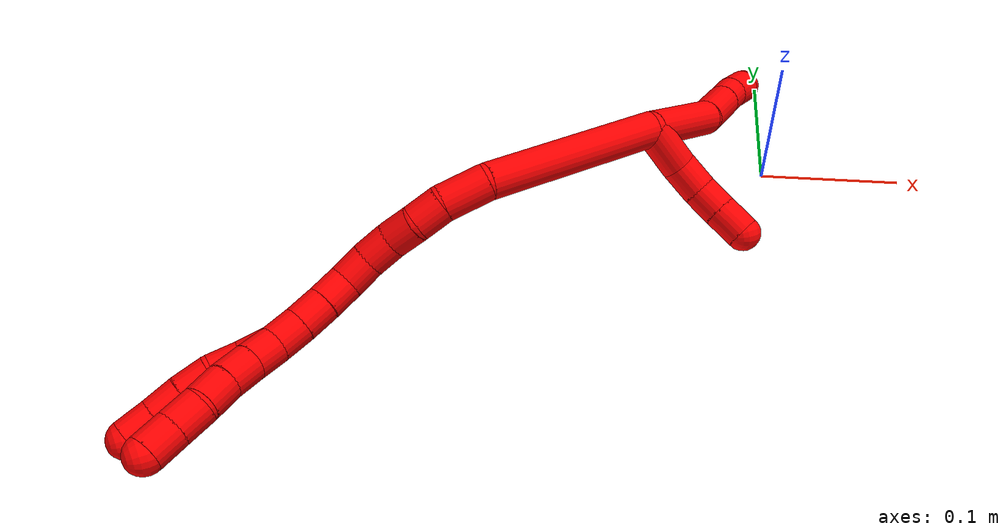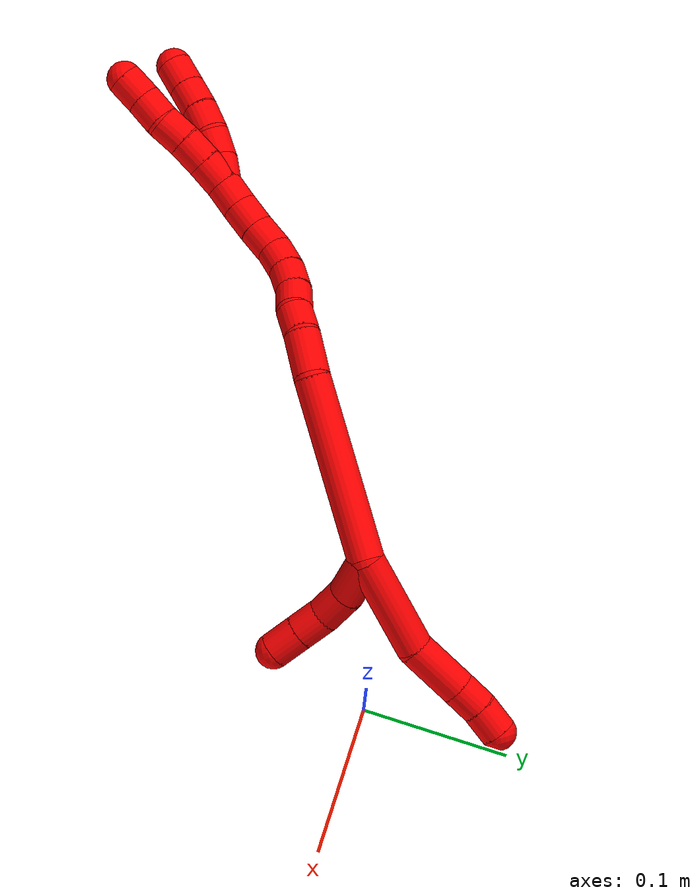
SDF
<sdf version="1.7">
 <world name="default">
  <model name="2">
   <static>0</static>
   <link name="2">
    <collision name="collision-cylinder-e_1_2_8">
     <pose>-0.003233 0.011413 -0.032042 -2.79943 -0.094773 0.535762</pose>
     <geometry><cylinder><radius>0.0125</radius><length>0.068335</length></cylinder></geometry>
     <surface>
      <friction><ode><mu>1.16</mu><mu2>1.16</mu2><slip1>0</slip1><slip2>0</slip2></ode></friction>
      <contact><ode><kp>1e+06</kp><kd>1</kd><max_vel>0</max_vel><min_depth>0.001</min_depth></ode></contact>
     </surface>
    </collision>
    <visual name="visual-cylinder-e_1_2_8">
     <pose>-0.003233 0.011413 -0.032042 -2.79943 -0.094773 0.535762</pose>
     <geometry><cylinder><radius>0.0125</radius><length>0.068335</length></cylinder></geometry>
     <material><ambient>1 0 0 1</ambient></material>
    </visual>
    <collision name="collision-cylinder-e_2_8_9">
     <pose>-0.004364 0.033692 -0.08091 -2.56814 0.104581 -0.351355</pose>
     <geometry><cylinder><radius>0.0125</radius><length>0.040279</length></cylinder></geometry>
     <surface>
      <friction><ode><mu>1.16</mu><mu2>1.16</mu2><slip1>0</slip1><slip2>0</slip2></ode></friction>
      <contact><ode><kp>1e+06</kp><kd>1</kd><max_vel>0</max_vel><min_depth>0.001</min_depth></ode></contact>
     </surface>
    </collision>
    <visual name="visual-cylinder-e_2_8_9">
     <pose>-0.004364 0.033692 -0.08091 -2.56814 0.104581 -0.351355</pose>
     <geometry><cylinder><radius>0.0125</radius><length>0.040279</length></cylinder></geometry>
     <material><ambient>1 0 0 1</ambient></material>
    </visual>
    <collision name="collision-cylinder-e_3_9_10">
     <pose>-0.000884 0.049777 -0.1063 -2.59438 0.136522 -0.477908</pose>
     <geometry><cylinder><radius>0.0125</radius><length>0.020248</length></cylinder></geometry>
     <surface>
      <friction><ode><mu>1.16</mu><mu2>1.16</mu2><slip1>0</slip1><slip2>0</slip2></ode></friction>
      <contact><ode><kp>1e+06</kp><kd>1</kd><max_vel>0</max_vel><min_depth>0.001</min_depth></ode></contact>
     </surface>
    </collision>
    <visual name="visual-cylinder-e_3_9_10">
     <pose>-0.000884 0.049777 -0.1063 -2.59438 0.136522 -0.477908</pose>
     <geometry><cylinder><radius>0.0125</radius><length>0.020248</length></cylinder></geometry>
     <material><ambient>1 0 0 1</ambient></material>
    </visual>
    <collision name="collision-cylinder-e_4_10_6">
     <pose>0.001266 0.059189 -0.124536 -2.73241 0.073175 -0.349228</pose>
     <geometry><cylinder><radius>0.0125</radius><length>0.021139</length></cylinder></geometry>
     <surface>
      <friction><ode><mu>1.16</mu><mu2>1.16</mu2><slip1>0</slip1><slip2>0</slip2></ode></friction>
      <contact><ode><kp>1e+06</kp><kd>1</kd><max_vel>0</max_vel><min_depth>0.001</min_depth></ode></contact>
     </surface>
    </collision>
    <visual name="visual-cylinder-e_4_10_6">
     <pose>0.001266 0.059189 -0.124536 -2.73241 0.073175 -0.349228</pose>
     <geometry><cylinder><radius>0.0125</radius><length>0.021139</length></cylinder></geometry>
     <material><ambient>1 0 0 1</ambient></material>
    </visual>
    <collision name="collision-cylinder-e_1_2_11">
     <pose>-0.01463 -0.001011 -0.008518 3.02347 -1.0405 -2.93589</pose>
     <geometry><cylinder><radius>0.0125</radius><length>0.033918</length></cylinder></geometry>
     <surface>
      <friction><ode><mu>1.16</mu><mu2>1.16</mu2><slip1>0</slip1><slip2>0</slip2></ode></friction>
      <contact><ode><kp>1e+06</kp><kd>1</kd><max_vel>0</max_vel><min_depth>0.001</min_depth></ode></contact>
     </surface>
    </collision>
    <visual name="visual-cylinder-e_1_2_11">
     <pose>-0.01463 -0.001011 -0.008518 3.02347 -1.0405 -2.93589</pose>
     <geometry><cylinder><radius>0.0125</radius><length>0.033918</length></cylinder></geometry>
     <material><ambient>1 0 0 1</ambient></material>
    </visual>
    <collision name="collision-cylinder-e_2_11_12">
     <pose>-0.039013 -0.006452 -0.02176 2.38832 -0.984656 -1.87084</pose>
     <geometry><cylinder><radius>0.0125</radius><length>0.023415</length></cylinder></geometry>
     <surface>
      <friction><ode><mu>1.16</mu><mu2>1.16</mu2><slip1>0</slip1><slip2>0</slip2></ode></friction>
      <contact><ode><kp>1e+06</kp><kd>1</kd><max_vel>0</max_vel><min_depth>0.001</min_depth></ode></contact>
     </surface>
    </collision>
    <visual name="visual-cylinder-e_2_11_12">
     <pose>-0.039013 -0.006452 -0.02176 2.38832 -0.984656 -1.87084</pose>
     <geometry><cylinder><radius>0.0125</radius><length>0.023415</length></cylinder></geometry>
     <material><ambient>1 0 0 1</ambient></material>
    </visual>
    <collision name="collision-cylinder-e_3_12_13">
     <pose>-0.056273 -0.017021 -0.029756 2.06043 -0.823331 -1.25778</pose>
     <geometry><cylinder><radius>0.0125</radius><length>0.02047</length></cylinder></geometry>
     <surface>
      <friction><ode><mu>1.16</mu><mu2>1.16</mu2><slip1>0</slip1><slip2>0</slip2></ode></friction>
      <contact><ode><kp>1e+06</kp><kd>1</kd><max_vel>0</max_vel><min_depth>0.001</min_depth></ode></contact>
     </surface>
    </collision>
    <visual name="visual-cylinder-e_3_12_13">
     <pose>-0.056273 -0.017021 -0.029756 2.06043 -0.823331 -1.25778</pose>
     <geometry><cylinder><radius>0.0125</radius><length>0.02047</length></cylinder></geometry>
     <material><ambient>1 0 0 1</ambient></material>
    </visual>
    <collision name="collision-cylinder-e_4_13_5">
     <pose>-0.071784 -0.029952 -0.036633 2.05879 -0.805532 -1.23284</pose>
     <geometry><cylinder><radius>0.0125</radius><length>0.022197</length></cylinder></geometry>
     <surface>
      <friction><ode><mu>1.16</mu><mu2>1.16</mu2><slip1>0</slip1><slip2>0</slip2></ode></friction>
      <contact><ode><kp>1e+06</kp><kd>1</kd><max_vel>0</max_vel><min_depth>0.001</min_depth></ode></contact>
     </surface>
    </collision>
    <visual name="visual-cylinder-e_4_13_5">
     <pose>-0.071784 -0.029952 -0.036633 2.05879 -0.805532 -1.23284</pose>
     <geometry><cylinder><radius>0.0125</radius><length>0.022197</length></cylinder></geometry>
     <material><ambient>1 0 0 1</ambient></material>
    </visual>
    <collision name="collision-cylinder-e_1_2_14">
     <pose>-0.004027 0.002621 0.063389 -0.041324 -0.063391 0.00131</pose>
     <geometry><cylinder><radius>0.0125</radius><length>0.127142</length></cylinder></geometry>
     <surface>
      <friction><ode><mu>1.16</mu><mu2>1.16</mu2><slip1>0</slip1><slip2>0</slip2></ode></friction>
      <contact><ode><kp>1e+06</kp><kd>1</kd><max_vel>0</max_vel><min_depth>0.001</min_depth></ode></contact>
     </surface>
    </collision>
    <visual name="visual-cylinder-e_1_2_14">
     <pose>-0.004027 0.002621 0.063389 -0.041324 -0.063391 0.00131</pose>
     <geometry><cylinder><radius>0.0125</radius><length>0.127142</length></cylinder></geometry>
     <material><ambient>1 0 0 1</ambient></material>
    </visual>
    <collision name="collision-cylinder-e_2_14_15">
     <pose>-0.01216 0.009136 0.141766 -0.254178 -0.259178 0.033301</pose>
     <geometry><cylinder><radius>0.0125</radius><length>0.03204</length></cylinder></geometry>
     <surface>
      <friction><ode><mu>1.16</mu><mu2>1.16</mu2><slip1>0</slip1><slip2>0</slip2></ode></friction>
      <contact><ode><kp>1e+06</kp><kd>1</kd><max_vel>0</max_vel><min_depth>0.001</min_depth></ode></contact>
     </surface>
    </collision>
    <visual name="visual-cylinder-e_2_14_15">
     <pose>-0.01216 0.009136 0.141766 -0.254178 -0.259178 0.033301</pose>
     <geometry><cylinder><radius>0.0125</radius><length>0.03204</length></cylinder></geometry>
     <material><ambient>1 0 0 1</ambient></material>
    </visual>
    <collision name="collision-cylinder-e_3_15_16">
     <pose>-0.020893 0.016121 0.165497 -0.339883 -0.462785 0.080817</pose>
     <geometry><cylinder><radius>0.0125</radius><length>0.020728</length></cylinder></geometry>
     <surface>
      <friction><ode><mu>1.16</mu><mu2>1.16</mu2><slip1>0</slip1><slip2>0</slip2></ode></friction>
      <contact><ode><kp>1e+06</kp><kd>1</kd><max_vel>0</max_vel><min_depth>0.001</min_depth></ode></contact>
     </surface>
    </collision>
    <visual name="visual-cylinder-e_3_15_16">
     <pose>-0.020893 0.016121 0.165497 -0.339883 -0.462785 0.080817</pose>
     <geometry><cylinder><radius>0.0125</radius><length>0.020728</length></cylinder></geometry>
     <material><ambient>1 0 0 1</ambient></material>
    </visual>
    <collision name="collision-cylinder-e_4_16_17">
     <pose>-0.03012 0.024644 0.181271 -0.65773 -0.477818 0.165852</pose>
     <geometry><cylinder><radius>0.0125</radius><length>0.02001</length></cylinder></geometry>
     <surface>
      <friction><ode><mu>1.16</mu><mu2>1.16</mu2><slip1>0</slip1><slip2>0</slip2></ode></friction>
      <contact><ode><kp>1e+06</kp><kd>1</kd><max_vel>0</max_vel><min_depth>0.001</min_depth></ode></contact>
     </surface>
    </collision>
    <visual name="visual-cylinder-e_4_16_17">
     <pose>-0.03012 0.024644 0.181271 -0.65773 -0.477818 0.165852</pose>
     <geometry><cylinder><radius>0.0125</radius><length>0.02001</length></cylinder></geometry>
     <material><ambient>1 0 0 1</ambient></material>
    </visual>
    <collision name="collision-cylinder-e_5_17_18">
     <pose>-0.039859 0.033419 0.196241 -0.398592 -0.537857 0.111217</pose>
     <geometry><cylinder><radius>0.0125</radius><length>0.020059</length></cylinder></geometry>
     <surface>
      <friction><ode><mu>1.16</mu><mu2>1.16</mu2><slip1>0</slip1><slip2>0</slip2></ode></friction>
      <contact><ode><kp>1e+06</kp><kd>1</kd><max_vel>0</max_vel><min_depth>0.001</min_depth></ode></contact>
     </surface>
    </collision>
    <visual name="visual-cylinder-e_5_17_18">
     <pose>-0.039859 0.033419 0.196241 -0.398592 -0.537857 0.111217</pose>
     <geometry><cylinder><radius>0.0125</radius><length>0.020059</length></cylinder></geometry>
     <material><ambient>1 0 0 1</ambient></material>
    </visual>
    <collision name="collision-cylinder-e_6_18_19">
     <pose>-0.050514 0.03813 0.212411 -0.164655 -0.584132 0.049608</pose>
     <geometry><cylinder><radius>0.0125</radius><length>0.020007</length></cylinder></geometry>
     <surface>
      <friction><ode><mu>1.16</mu><mu2>1.16</mu2><slip1>0</slip1><slip2>0</slip2></ode></friction>
      <contact><ode><kp>1e+06</kp><kd>1</kd><max_vel>0</max_vel><min_depth>0.001</min_depth></ode></contact>
     </surface>
    </collision>
    <visual name="visual-cylinder-e_6_18_19">
     <pose>-0.050514 0.03813 0.212411 -0.164655 -0.584132 0.049608</pose>
     <geometry><cylinder><radius>0.0125</radius><length>0.020007</length></cylinder></geometry>
     <material><ambient>1 0 0 1</ambient></material>
    </visual>
    <collision name="collision-cylinder-e_7_19_20">
     <pose>-0.060219 0.037782 0.229562 0.190057 -0.432097 -0.041832</pose>
     <geometry><cylinder><radius>0.0125</radius><length>0.020002</length></cylinder></geometry>
     <surface>
      <friction><ode><mu>1.16</mu><mu2>1.16</mu2><slip1>0</slip1><slip2>0</slip2></ode></friction>
      <contact><ode><kp>1e+06</kp><kd>1</kd><max_vel>0</max_vel><min_depth>0.001</min_depth></ode></contact>
     </surface>
    </collision>
    <visual name="visual-cylinder-e_7_19_20">
     <pose>-0.060219 0.037782 0.229562 0.190057 -0.432097 -0.041832</pose>
     <geometry><cylinder><radius>0.0125</radius><length>0.020002</length></cylinder></geometry>
     <material><ambient>1 0 0 1</ambient></material>
    </visual>
    <collision name="collision-cylinder-e_8_20_21">
     <pose>-0.068393 0.034706 0.247553 0.148776 -0.409787 -0.030972</pose>
     <geometry><cylinder><radius>0.0125</radius><length>0.020005</length></cylinder></geometry>
     <surface>
      <friction><ode><mu>1.16</mu><mu2>1.16</mu2><slip1>0</slip1><slip2>0</slip2></ode></friction>
      <contact><ode><kp>1e+06</kp><kd>1</kd><max_vel>0</max_vel><min_depth>0.001</min_depth></ode></contact>
     </surface>
    </collision>
    <visual name="visual-cylinder-e_8_20_21">
     <pose>-0.068393 0.034706 0.247553 0.148776 -0.409787 -0.030972</pose>
     <geometry><cylinder><radius>0.0125</radius><length>0.020005</length></cylinder></geometry>
     <material><ambient>1 0 0 1</ambient></material>
    </visual>
    <collision name="collision-cylinder-e_9_21_1">
     <pose>-0.075827 0.0319 0.265903 0.154636 -0.35204 -0.027557</pose>
     <geometry><cylinder><radius>0.0125</radius><length>0.020005</length></cylinder></geometry>
     <surface>
      <friction><ode><mu>1.16</mu><mu2>1.16</mu2><slip1>0</slip1><slip2>0</slip2></ode></friction>
      <contact><ode><kp>1e+06</kp><kd>1</kd><max_vel>0</max_vel><min_depth>0.001</min_depth></ode></contact>
     </surface>
    </collision>
    <visual name="visual-cylinder-e_9_21_1">
     <pose>-0.075827 0.0319 0.265903 0.154636 -0.35204 -0.027557</pose>
     <geometry><cylinder><radius>0.0125</radius><length>0.020005</length></cylinder></geometry>
     <material><ambient>1 0 0 1</ambient></material>
    </visual>
    <collision name="collision-cylinder-e_1_1_22">
     <pose>-0.081114 0.026608 0.284226 0.402042 -0.184848 -0.03777</pose>
     <geometry><cylinder><radius>0.0125</radius><length>0.02</length></cylinder></geometry>
     <surface>
      <friction><ode><mu>1.16</mu><mu2>1.16</mu2><slip1>0</slip1><slip2>0</slip2></ode></friction>
      <contact><ode><kp>1e+06</kp><kd>1</kd><max_vel>0</max_vel><min_depth>0.001</min_depth></ode></contact>
     </surface>
    </collision>
    <visual name="visual-cylinder-e_1_1_22">
     <pose>-0.081114 0.026608 0.284226 0.402042 -0.184848 -0.03777</pose>
     <geometry><cylinder><radius>0.0125</radius><length>0.02</length></cylinder></geometry>
     <material><ambient>1 0 0 1</ambient></material>
    </visual>
    <collision name="collision-cylinder-e_2_22_23">
     <pose>-0.084951 0.018624 0.302154 0.435902 -0.2013 -0.044725</pose>
     <geometry><cylinder><radius>0.0125</radius><length>0.02</length></cylinder></geometry>
     <surface>
      <friction><ode><mu>1.16</mu><mu2>1.16</mu2><slip1>0</slip1><slip2>0</slip2></ode></friction>
      <contact><ode><kp>1e+06</kp><kd>1</kd><max_vel>0</max_vel><min_depth>0.001</min_depth></ode></contact>
     </surface>
    </collision>
    <visual name="visual-cylinder-e_2_22_23">
     <pose>-0.084951 0.018624 0.302154 0.435902 -0.2013 -0.044725</pose>
     <geometry><cylinder><radius>0.0125</radius><length>0.02</length></cylinder></geometry>
     <material><ambient>1 0 0 1</ambient></material>
    </visual>
    <collision name="collision-cylinder-e_3_23_24">
     <pose>-0.089711 0.009897 0.31948 0.497862 -0.27968 -0.071532</pose>
     <geometry><cylinder><radius>0.0125</radius><length>0.02</length></cylinder></geometry>
     <surface>
      <friction><ode><mu>1.16</mu><mu2>1.16</mu2><slip1>0</slip1><slip2>0</slip2></ode></friction>
      <contact><ode><kp>1e+06</kp><kd>1</kd><max_vel>0</max_vel><min_depth>0.001</min_depth></ode></contact>
     </surface>
    </collision>
    <visual name="visual-cylinder-e_3_23_24">
     <pose>-0.089711 0.009897 0.31948 0.497862 -0.27968 -0.071532</pose>
     <geometry><cylinder><radius>0.0125</radius><length>0.02</length></cylinder></geometry>
     <material><ambient>1 0 0 1</ambient></material>
    </visual>
    <collision name="collision-cylinder-e_4_24_25">
     <pose>-0.095928 0.002837 0.336978 0.26643 -0.352903 -0.04778</pose>
     <geometry><cylinder><radius>0.0125</radius><length>0.02</length></cylinder></geometry>
     <surface>
      <friction><ode><mu>1.16</mu><mu2>1.16</mu2><slip1>0</slip1><slip2>0</slip2></ode></friction>
      <contact><ode><kp>1e+06</kp><kd>1</kd><max_vel>0</max_vel><min_depth>0.001</min_depth></ode></contact>
     </surface>
    </collision>
    <visual name="visual-cylinder-e_4_24_25">
     <pose>-0.095928 0.002837 0.336978 0.26643 -0.352903 -0.04778</pose>
     <geometry><cylinder><radius>0.0125</radius><length>0.02</length></cylinder></geometry>
     <material><ambient>1 0 0 1</ambient></material>
    </visual>
    <collision name="collision-cylinder-e_5_25_4">
     <pose>-0.102592 -0.002744 0.354977 0.334539 -0.326561 -0.05562</pose>
     <geometry><cylinder><radius>0.0125</radius><length>0.02</length></cylinder></geometry>
     <surface>
      <friction><ode><mu>1.16</mu><mu2>1.16</mu2><slip1>0</slip1><slip2>0</slip2></ode></friction>
      <contact><ode><kp>1e+06</kp><kd>1</kd><max_vel>0</max_vel><min_depth>0.001</min_depth></ode></contact>
     </surface>
    </collision>
    <visual name="visual-cylinder-e_5_25_4">
     <pose>-0.102592 -0.002744 0.354977 0.334539 -0.326561 -0.05562</pose>
     <geometry><cylinder><radius>0.0125</radius><length>0.02</length></cylinder></geometry>
     <material><ambient>1 0 0 1</ambient></material>
    </visual>
    <collision name="collision-cylinder-e_1_1_26">
     <pose>-0.082127 0.033706 0.284197 -0.346153 -0.28911 0.050888</pose>
     <geometry><cylinder><radius>0.0125</radius><length>0.02</length></cylinder></geometry>
     <surface>
      <friction><ode><mu>1.16</mu><mu2>1.16</mu2><slip1>0</slip1><slip2>0</slip2></ode></friction>
      <contact><ode><kp>1e+06</kp><kd>1</kd><max_vel>0</max_vel><min_depth>0.001</min_depth></ode></contact>
     </surface>
    </collision>
    <visual name="visual-cylinder-e_1_1_26">
     <pose>-0.082127 0.033706 0.284197 -0.346153 -0.28911 0.050888</pose>
     <geometry><cylinder><radius>0.0125</radius><length>0.02</length></cylinder></geometry>
     <material><ambient>1 0 0 1</ambient></material>
    </visual>
    <collision name="collision-cylinder-e_2_26_27">
     <pose>-0.086466 0.037524 0.303086 -0.057274 -0.149377 0.004287</pose>
     <geometry><cylinder><radius>0.0125</radius><length>0.02</length></cylinder></geometry>
     <surface>
      <friction><ode><mu>1.16</mu><mu2>1.16</mu2><slip1>0</slip1><slip2>0</slip2></ode></friction>
      <contact><ode><kp>1e+06</kp><kd>1</kd><max_vel>0</max_vel><min_depth>0.001</min_depth></ode></contact>
     </surface>
    </collision>
    <visual name="visual-cylinder-e_2_26_27">
     <pose>-0.086466 0.037524 0.303086 -0.057274 -0.149377 0.004287</pose>
     <geometry><cylinder><radius>0.0125</radius><length>0.02</length></cylinder></geometry>
     <material><ambient>1 0 0 1</ambient></material>
    </visual>
    <collision name="collision-cylinder-e_3_27_28">
     <pose>-0.091626 0.039147 0.322199 -0.113925 -0.37598 0.021695</pose>
     <geometry><cylinder><radius>0.0125</radius><length>0.02</length></cylinder></geometry>
     <surface>
      <friction><ode><mu>1.16</mu><mu2>1.16</mu2><slip1>0</slip1><slip2>0</slip2></ode></friction>
      <contact><ode><kp>1e+06</kp><kd>1</kd><max_vel>0</max_vel><min_depth>0.001</min_depth></ode></contact>
     </surface>
    </collision>
    <visual name="visual-cylinder-e_3_27_28">
     <pose>-0.091626 0.039147 0.322199 -0.113925 -0.37598 0.021695</pose>
     <geometry><cylinder><radius>0.0125</radius><length>0.02</length></cylinder></geometry>
     <material><ambient>1 0 0 1</ambient></material>
    </visual>
    <collision name="collision-cylinder-e_4_28_29">
     <pose>-0.099704 0.040763 0.3404 -0.062232 -0.456252 0.014453</pose>
     <geometry><cylinder><radius>0.0125</radius><length>0.02</length></cylinder></geometry>
     <surface>
      <friction><ode><mu>1.16</mu><mu2>1.16</mu2><slip1>0</slip1><slip2>0</slip2></ode></friction>
      <contact><ode><kp>1e+06</kp><kd>1</kd><max_vel>0</max_vel><min_depth>0.001</min_depth></ode></contact>
     </surface>
    </collision>
    <visual name="visual-cylinder-e_4_28_29">
     <pose>-0.099704 0.040763 0.3404 -0.062232 -0.456252 0.014453</pose>
     <geometry><cylinder><radius>0.0125</radius><length>0.02</length></cylinder></geometry>
     <material><ambient>1 0 0 1</ambient></material>
    </visual>
    <collision name="collision-cylinder-e_5_29_3">
     <pose>-0.107966 0.041317 0.358587 0.000449 -0.395879 -9e-05</pose>
     <geometry><cylinder><radius>0.0125</radius><length>0.02</length></cylinder></geometry>
     <surface>
      <friction><ode><mu>1.16</mu><mu2>1.16</mu2><slip1>0</slip1><slip2>0</slip2></ode></friction>
      <contact><ode><kp>1e+06</kp><kd>1</kd><max_vel>0</max_vel><min_depth>0.001</min_depth></ode></contact>
     </surface>
    </collision>
    <visual name="visual-cylinder-e_5_29_3">
     <pose>-0.107966 0.041317 0.358587 0.000449 -0.395879 -9e-05</pose>
     <geometry><cylinder><radius>0.0125</radius><length>0.02</length></cylinder></geometry>
     <material><ambient>1 0 0 1</ambient></material>
    </visual>
    <collision name="collision-sphere-3">
     <pose>-0.111822 0.041313 0.367813 0 -0 0</pose>
     <geometry><sphere><radius>0.0125</radius></sphere></geometry>
     <surface>
      <friction><ode><mu>1.16</mu><mu2>1.16</mu2><slip1>0</slip1><slip2>0</slip2></ode></friction>
      <contact><ode><kp>1e+06</kp><kd>1</kd><max_vel>0</max_vel><min_depth>0.001</min_depth></ode></contact>
     </surface>
    </collision>
    <visual name="visual-sphere-3">
     <pose>-0.111822 0.041313 0.367813 0 -0 0</pose>
     <geometry><sphere><radius>0.0125</radius></sphere></geometry>
     <material><ambient>1 0 0 1</ambient></material>
    </visual>
    <collision name="collision-sphere-29">
     <pose>-0.10411 0.041321 0.34936 0 -0 0</pose>
     <geometry><sphere><radius>0.0125</radius></sphere></geometry>
     <surface>
      <friction><ode><mu>1.16</mu><mu2>1.16</mu2><slip1>0</slip1><slip2>0</slip2></ode></friction>
      <contact><ode><kp>1e+06</kp><kd>1</kd><max_vel>0</max_vel><min_depth>0.001</min_depth></ode></contact>
     </surface>
    </collision>
    <visual name="visual-sphere-29">
     <pose>-0.10411 0.041321 0.34936 0 -0 0</pose>
     <geometry><sphere><radius>0.0125</radius></sphere></geometry>
     <material><ambient>1 0 0 1</ambient></material>
    </visual>
    <collision name="collision-sphere-28">
     <pose>-0.095298 0.040205 0.33144 0 -0 0</pose>
     <geometry><sphere><radius>0.0125</radius></sphere></geometry>
     <surface>
      <friction><ode><mu>1.16</mu><mu2>1.16</mu2><slip1>0</slip1><slip2>0</slip2></ode></friction>
      <contact><ode><kp>1e+06</kp><kd>1</kd><max_vel>0</max_vel><min_depth>0.001</min_depth></ode></contact>
     </surface>
    </collision>
    <visual name="visual-sphere-28">
     <pose>-0.095298 0.040205 0.33144 0 -0 0</pose>
     <geometry><sphere><radius>0.0125</radius></sphere></geometry>
     <material><ambient>1 0 0 1</ambient></material>
    </visual>
    <collision name="collision-sphere-27">
     <pose>-0.087954 0.03809 0.312958 0 -0 0</pose>
     <geometry><sphere><radius>0.0125</radius></sphere></geometry>
     <surface>
      <friction><ode><mu>1.16</mu><mu2>1.16</mu2><slip1>0</slip1><slip2>0</slip2></ode></friction>
      <contact><ode><kp>1e+06</kp><kd>1</kd><max_vel>0</max_vel><min_depth>0.001</min_depth></ode></contact>
     </surface>
    </collision>
    <visual name="visual-sphere-27">
     <pose>-0.087954 0.03809 0.312958 0 -0 0</pose>
     <geometry><sphere><radius>0.0125</radius></sphere></geometry>
     <material><ambient>1 0 0 1</ambient></material>
    </visual>
    <collision name="collision-sphere-26">
     <pose>-0.084978 0.036958 0.293213 0 -0 0</pose>
     <geometry><sphere><radius>0.0125</radius></sphere></geometry>
     <surface>
      <friction><ode><mu>1.16</mu><mu2>1.16</mu2><slip1>0</slip1><slip2>0</slip2></ode></friction>
      <contact><ode><kp>1e+06</kp><kd>1</kd><max_vel>0</max_vel><min_depth>0.001</min_depth></ode></contact>
     </surface>
    </collision>
    <visual name="visual-sphere-26">
     <pose>-0.084978 0.036958 0.293213 0 -0 0</pose>
     <geometry><sphere><radius>0.0125</radius></sphere></geometry>
     <material><ambient>1 0 0 1</ambient></material>
    </visual>
    <collision name="collision-sphere-4">
     <pose>-0.1058 -0.005854 0.363923 0 -0 0</pose>
     <geometry><sphere><radius>0.0125</radius></sphere></geometry>
     <surface>
      <friction><ode><mu>1.16</mu><mu2>1.16</mu2><slip1>0</slip1><slip2>0</slip2></ode></friction>
      <contact><ode><kp>1e+06</kp><kd>1</kd><max_vel>0</max_vel><min_depth>0.001</min_depth></ode></contact>
     </surface>
    </collision>
    <visual name="visual-sphere-4">
     <pose>-0.1058 -0.005854 0.363923 0 -0 0</pose>
     <geometry><sphere><radius>0.0125</radius></sphere></geometry>
     <material><ambient>1 0 0 1</ambient></material>
    </visual>
    <collision name="collision-sphere-25">
     <pose>-0.099384 0.000366 0.34603 0 -0 0</pose>
     <geometry><sphere><radius>0.0125</radius></sphere></geometry>
     <surface>
      <friction><ode><mu>1.16</mu><mu2>1.16</mu2><slip1>0</slip1><slip2>0</slip2></ode></friction>
      <contact><ode><kp>1e+06</kp><kd>1</kd><max_vel>0</max_vel><min_depth>0.001</min_depth></ode></contact>
     </surface>
    </collision>
    <visual name="visual-sphere-25">
     <pose>-0.099384 0.000366 0.34603 0 -0 0</pose>
     <geometry><sphere><radius>0.0125</radius></sphere></geometry>
     <material><ambient>1 0 0 1</ambient></material>
    </visual>
    <collision name="collision-sphere-24">
     <pose>-0.092472 0.005307 0.327925 0 -0 0</pose>
     <geometry><sphere><radius>0.0125</radius></sphere></geometry>
     <surface>
      <friction><ode><mu>1.16</mu><mu2>1.16</mu2><slip1>0</slip1><slip2>0</slip2></ode></friction>
      <contact><ode><kp>1e+06</kp><kd>1</kd><max_vel>0</max_vel><min_depth>0.001</min_depth></ode></contact>
     </surface>
    </collision>
    <visual name="visual-sphere-24">
     <pose>-0.092472 0.005307 0.327925 0 -0 0</pose>
     <geometry><sphere><radius>0.0125</radius></sphere></geometry>
     <material><ambient>1 0 0 1</ambient></material>
    </visual>
    <collision name="collision-sphere-23">
     <pose>-0.086951 0.014487 0.311036 0 -0 0</pose>
     <geometry><sphere><radius>0.0125</radius></sphere></geometry>
     <surface>
      <friction><ode><mu>1.16</mu><mu2>1.16</mu2><slip1>0</slip1><slip2>0</slip2></ode></friction>
      <contact><ode><kp>1e+06</kp><kd>1</kd><max_vel>0</max_vel><min_depth>0.001</min_depth></ode></contact>
     </surface>
    </collision>
    <visual name="visual-sphere-23">
     <pose>-0.086951 0.014487 0.311036 0 -0 0</pose>
     <geometry><sphere><radius>0.0125</radius></sphere></geometry>
     <material><ambient>1 0 0 1</ambient></material>
    </visual>
    <collision name="collision-sphere-22">
     <pose>-0.082952 0.022761 0.293272 0 -0 0</pose>
     <geometry><sphere><radius>0.0125</radius></sphere></geometry>
     <surface>
      <friction><ode><mu>1.16</mu><mu2>1.16</mu2><slip1>0</slip1><slip2>0</slip2></ode></friction>
      <contact><ode><kp>1e+06</kp><kd>1</kd><max_vel>0</max_vel><min_depth>0.001</min_depth></ode></contact>
     </surface>
    </collision>
    <visual name="visual-sphere-22">
     <pose>-0.082952 0.022761 0.293272 0 -0 0</pose>
     <geometry><sphere><radius>0.0125</radius></sphere></geometry>
     <material><ambient>1 0 0 1</ambient></material>
    </visual>
    <collision name="collision-sphere-1">
     <pose>-0.079276 0.030454 0.27518 0 -0 0</pose>
     <geometry><sphere><radius>0.0125</radius></sphere></geometry>
     <surface>
      <friction><ode><mu>1.16</mu><mu2>1.16</mu2><slip1>0</slip1><slip2>0</slip2></ode></friction>
      <contact><ode><kp>1e+06</kp><kd>1</kd><max_vel>0</max_vel><min_depth>0.001</min_depth></ode></contact>
     </surface>
    </collision>
    <visual name="visual-sphere-1">
     <pose>-0.079276 0.030454 0.27518 0 -0 0</pose>
     <geometry><sphere><radius>0.0125</radius></sphere></geometry>
     <material><ambient>1 0 0 1</ambient></material>
    </visual>
    <collision name="collision-sphere-21">
     <pose>-0.072378 0.033346 0.256626 0 -0 0</pose>
     <geometry><sphere><radius>0.0125</radius></sphere></geometry>
     <surface>
      <friction><ode><mu>1.16</mu><mu2>1.16</mu2><slip1>0</slip1><slip2>0</slip2></ode></friction>
      <contact><ode><kp>1e+06</kp><kd>1</kd><max_vel>0</max_vel><min_depth>0.001</min_depth></ode></contact>
     </surface>
    </collision>
    <visual name="visual-sphere-21">
     <pose>-0.072378 0.033346 0.256626 0 -0 0</pose>
     <geometry><sphere><radius>0.0125</radius></sphere></geometry>
     <material><ambient>1 0 0 1</ambient></material>
    </visual>
    <collision name="collision-sphere-11">
     <pose>-0.02926 -0.002022 -0.017036 0 -0 0</pose>
     <geometry><sphere><radius>0.0125</radius></sphere></geometry>
     <surface>
      <friction><ode><mu>1.16</mu><mu2>1.16</mu2><slip1>0</slip1><slip2>0</slip2></ode></friction>
      <contact><ode><kp>1e+06</kp><kd>1</kd><max_vel>0</max_vel><min_depth>0.001</min_depth></ode></contact>
     </surface>
    </collision>
    <visual name="visual-sphere-11">
     <pose>-0.02926 -0.002022 -0.017036 0 -0 0</pose>
     <geometry><sphere><radius>0.0125</radius></sphere></geometry>
     <material><ambient>1 0 0 1</ambient></material>
    </visual>
    <collision name="collision-sphere-6">
     <pose>0.002039 0.063383 -0.134207 0 -0 0</pose>
     <geometry><sphere><radius>0.0125</radius></sphere></geometry>
     <surface>
      <friction><ode><mu>1.16</mu><mu2>1.16</mu2><slip1>0</slip1><slip2>0</slip2></ode></friction>
      <contact><ode><kp>1e+06</kp><kd>1</kd><max_vel>0</max_vel><min_depth>0.001</min_depth></ode></contact>
     </surface>
    </collision>
    <visual name="visual-sphere-6">
     <pose>0.002039 0.063383 -0.134207 0 -0 0</pose>
     <geometry><sphere><radius>0.0125</radius></sphere></geometry>
     <material><ambient>1 0 0 1</ambient></material>
    </visual>
    <collision name="collision-sphere-10">
     <pose>0.000494 0.054996 -0.114865 0 -0 0</pose>
     <geometry><sphere><radius>0.0125</radius></sphere></geometry>
     <surface>
      <friction><ode><mu>1.16</mu><mu2>1.16</mu2><slip1>0</slip1><slip2>0</slip2></ode></friction>
      <contact><ode><kp>1e+06</kp><kd>1</kd><max_vel>0</max_vel><min_depth>0.001</min_depth></ode></contact>
     </surface>
    </collision>
    <visual name="visual-sphere-10">
     <pose>0.000494 0.054996 -0.114865 0 -0 0</pose>
     <geometry><sphere><radius>0.0125</radius></sphere></geometry>
     <material><ambient>1 0 0 1</ambient></material>
    </visual>
    <collision name="collision-sphere-9">
     <pose>-0.002262 0.044559 -0.097735 0 -0 0</pose>
     <geometry><sphere><radius>0.0125</radius></sphere></geometry>
     <surface>
      <friction><ode><mu>1.16</mu><mu2>1.16</mu2><slip1>0</slip1><slip2>0</slip2></ode></friction>
      <contact><ode><kp>1e+06</kp><kd>1</kd><max_vel>0</max_vel><min_depth>0.001</min_depth></ode></contact>
     </surface>
    </collision>
    <visual name="visual-sphere-9">
     <pose>-0.002262 0.044559 -0.097735 0 -0 0</pose>
     <geometry><sphere><radius>0.0125</radius></sphere></geometry>
     <material><ambient>1 0 0 1</ambient></material>
    </visual>
    <collision name="collision-sphere-2">
     <geometry><sphere><radius>0.0125</radius></sphere></geometry>
     <surface>
      <friction><ode><mu>1.16</mu><mu2>1.16</mu2><slip1>0</slip1><slip2>0</slip2></ode></friction>
      <contact><ode><kp>1e+06</kp><kd>1</kd><max_vel>0</max_vel><min_depth>0.001</min_depth></ode></contact>
     </surface>
    </collision>
    <visual name="visual-sphere-2">
     <geometry><sphere><radius>0.0125</radius></sphere></geometry>
     <material><ambient>1 0 0 1</ambient></material>
    </visual>
    <collision name="collision-sphere-19">
     <pose>-0.056031 0.039497 0.220643 0 -0 0</pose>
     <geometry><sphere><radius>0.0125</radius></sphere></geometry>
     <surface>
      <friction><ode><mu>1.16</mu><mu2>1.16</mu2><slip1>0</slip1><slip2>0</slip2></ode></friction>
      <contact><ode><kp>1e+06</kp><kd>1</kd><max_vel>0</max_vel><min_depth>0.001</min_depth></ode></contact>
     </surface>
    </collision>
    <visual name="visual-sphere-19">
     <pose>-0.056031 0.039497 0.220643 0 -0 0</pose>
     <geometry><sphere><radius>0.0125</radius></sphere></geometry>
     <material><ambient>1 0 0 1</ambient></material>
    </visual>
    <collision name="collision-sphere-8">
     <pose>-0.006467 0.022825 -0.064085 0 -0 0</pose>
     <geometry><sphere><radius>0.0125</radius></sphere></geometry>
     <surface>
      <friction><ode><mu>1.16</mu><mu2>1.16</mu2><slip1>0</slip1><slip2>0</slip2></ode></friction>
      <contact><ode><kp>1e+06</kp><kd>1</kd><max_vel>0</max_vel><min_depth>0.001</min_depth></ode></contact>
     </surface>
    </collision>
    <visual name="visual-sphere-8">
     <pose>-0.006467 0.022825 -0.064085 0 -0 0</pose>
     <geometry><sphere><radius>0.0125</radius></sphere></geometry>
     <material><ambient>1 0 0 1</ambient></material>
    </visual>
    <collision name="collision-sphere-12">
     <pose>-0.048766 -0.010881 -0.026484 0 -0 0</pose>
     <geometry><sphere><radius>0.0125</radius></sphere></geometry>
     <surface>
      <friction><ode><mu>1.16</mu><mu2>1.16</mu2><slip1>0</slip1><slip2>0</slip2></ode></friction>
      <contact><ode><kp>1e+06</kp><kd>1</kd><max_vel>0</max_vel><min_depth>0.001</min_depth></ode></contact>
     </surface>
    </collision>
    <visual name="visual-sphere-12">
     <pose>-0.048766 -0.010881 -0.026484 0 -0 0</pose>
     <geometry><sphere><radius>0.0125</radius></sphere></geometry>
     <material><ambient>1 0 0 1</ambient></material>
    </visual>
    <collision name="collision-sphere-13">
     <pose>-0.063779 -0.023162 -0.033028 0 -0 0</pose>
     <geometry><sphere><radius>0.0125</radius></sphere></geometry>
     <surface>
      <friction><ode><mu>1.16</mu><mu2>1.16</mu2><slip1>0</slip1><slip2>0</slip2></ode></friction>
      <contact><ode><kp>1e+06</kp><kd>1</kd><max_vel>0</max_vel><min_depth>0.001</min_depth></ode></contact>
     </surface>
    </collision>
    <visual name="visual-sphere-13">
     <pose>-0.063779 -0.023162 -0.033028 0 -0 0</pose>
     <geometry><sphere><radius>0.0125</radius></sphere></geometry>
     <material><ambient>1 0 0 1</ambient></material>
    </visual>
    <collision name="collision-sphere-5">
     <pose>-0.079788 -0.036743 -0.040237 0 -0 0</pose>
     <geometry><sphere><radius>0.0125</radius></sphere></geometry>
     <surface>
      <friction><ode><mu>1.16</mu><mu2>1.16</mu2><slip1>0</slip1><slip2>0</slip2></ode></friction>
      <contact><ode><kp>1e+06</kp><kd>1</kd><max_vel>0</max_vel><min_depth>0.001</min_depth></ode></contact>
     </surface>
    </collision>
    <visual name="visual-sphere-5">
     <pose>-0.079788 -0.036743 -0.040237 0 -0 0</pose>
     <geometry><sphere><radius>0.0125</radius></sphere></geometry>
     <material><ambient>1 0 0 1</ambient></material>
    </visual>
    <collision name="collision-sphere-14">
     <pose>-0.008054 0.005242 0.126779 0 -0 0</pose>
     <geometry><sphere><radius>0.0125</radius></sphere></geometry>
     <surface>
      <friction><ode><mu>1.16</mu><mu2>1.16</mu2><slip1>0</slip1><slip2>0</slip2></ode></friction>
      <contact><ode><kp>1e+06</kp><kd>1</kd><max_vel>0</max_vel><min_depth>0.001</min_depth></ode></contact>
     </surface>
    </collision>
    <visual name="visual-sphere-14">
     <pose>-0.008054 0.005242 0.126779 0 -0 0</pose>
     <geometry><sphere><radius>0.0125</radius></sphere></geometry>
     <material><ambient>1 0 0 1</ambient></material>
    </visual>
    <collision name="collision-sphere-15">
     <pose>-0.016266 0.013029 0.156754 0 -0 0</pose>
     <geometry><sphere><radius>0.0125</radius></sphere></geometry>
     <surface>
      <friction><ode><mu>1.16</mu><mu2>1.16</mu2><slip1>0</slip1><slip2>0</slip2></ode></friction>
      <contact><ode><kp>1e+06</kp><kd>1</kd><max_vel>0</max_vel><min_depth>0.001</min_depth></ode></contact>
     </surface>
    </collision>
    <visual name="visual-sphere-15">
     <pose>-0.016266 0.013029 0.156754 0 -0 0</pose>
     <geometry><sphere><radius>0.0125</radius></sphere></geometry>
     <material><ambient>1 0 0 1</ambient></material>
    </visual>
    <collision name="collision-sphere-16">
     <pose>-0.02552 0.019213 0.17424 0 -0 0</pose>
     <geometry><sphere><radius>0.0125</radius></sphere></geometry>
     <surface>
      <friction><ode><mu>1.16</mu><mu2>1.16</mu2><slip1>0</slip1><slip2>0</slip2></ode></friction>
      <contact><ode><kp>1e+06</kp><kd>1</kd><max_vel>0</max_vel><min_depth>0.001</min_depth></ode></contact>
     </surface>
    </collision>
    <visual name="visual-sphere-16">
     <pose>-0.02552 0.019213 0.17424 0 -0 0</pose>
     <geometry><sphere><radius>0.0125</radius></sphere></geometry>
     <material><ambient>1 0 0 1</ambient></material>
    </visual>
    <collision name="collision-sphere-17">
     <pose>-0.034721 0.030075 0.188303 0 -0 0</pose>
     <geometry><sphere><radius>0.0125</radius></sphere></geometry>
     <surface>
      <friction><ode><mu>1.16</mu><mu2>1.16</mu2><slip1>0</slip1><slip2>0</slip2></ode></friction>
      <contact><ode><kp>1e+06</kp><kd>1</kd><max_vel>0</max_vel><min_depth>0.001</min_depth></ode></contact>
     </surface>
    </collision>
    <visual name="visual-sphere-17">
     <pose>-0.034721 0.030075 0.188303 0 -0 0</pose>
     <geometry><sphere><radius>0.0125</radius></sphere></geometry>
     <material><ambient>1 0 0 1</ambient></material>
    </visual>
    <collision name="collision-sphere-18">
     <pose>-0.044998 0.036762 0.204179 0 -0 0</pose>
     <geometry><sphere><radius>0.0125</radius></sphere></geometry>
     <surface>
      <friction><ode><mu>1.16</mu><mu2>1.16</mu2><slip1>0</slip1><slip2>0</slip2></ode></friction>
      <contact><ode><kp>1e+06</kp><kd>1</kd><max_vel>0</max_vel><min_depth>0.001</min_depth></ode></contact>
     </surface>
    </collision>
    <visual name="visual-sphere-18">
     <pose>-0.044998 0.036762 0.204179 0 -0 0</pose>
     <geometry><sphere><radius>0.0125</radius></sphere></geometry>
     <material><ambient>1 0 0 1</ambient></material>
    </visual>
    <collision name="collision-sphere-20">
     <pose>-0.064408 0.036066 0.23848 0 -0 0</pose>
     <geometry><sphere><radius>0.0125</radius></sphere></geometry>
     <surface>
      <friction><ode><mu>1.16</mu><mu2>1.16</mu2><slip1>0</slip1><slip2>0</slip2></ode></friction>
      <contact><ode><kp>1e+06</kp><kd>1</kd><max_vel>0</max_vel><min_depth>0.001</min_depth></ode></contact>
     </surface>
    </collision>
    <visual name="visual-sphere-20">
     <pose>-0.064408 0.036066 0.23848 0 -0 0</pose>
     <geometry><sphere><radius>0.0125</radius></sphere></geometry>
     <material><ambient>1 0 0 1</ambient></material>
    </visual>
    <inertial>
     <pose>-0.041098 0.017501 0.125841 0 -0 0</pose>
     <mass>0.75</mass>
     <inertia>
      <ixx>0.000226</ixx>
      <ixy>0</ixy>
      <ixz>0</ixz>
      <iyy>0.000191</iyy>
      <iyz>0</iyz>
      <izz>3.3e-05</izz>
     </inertia>
    </inertial>
   </link>
   <pose>-0.085754 -0.026636 0.065528 -1.26219 -0.987313 1.90974</pose>
  </model>
 </world>
</sdf>
